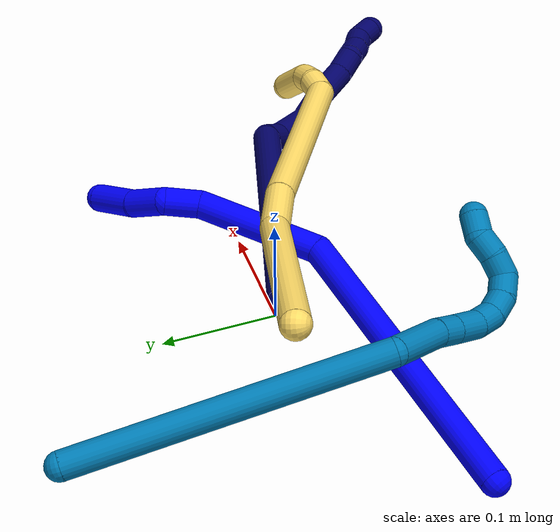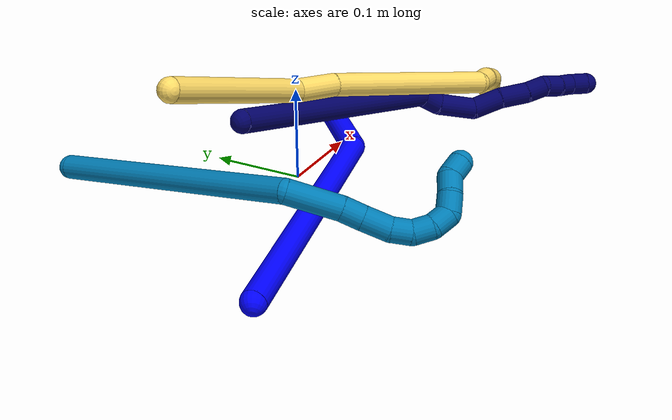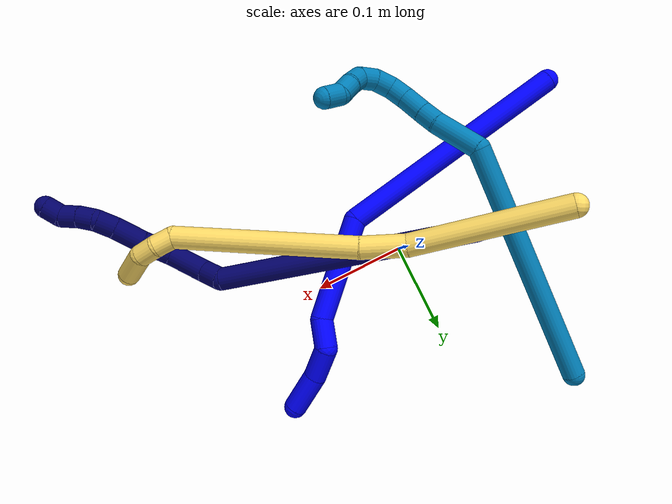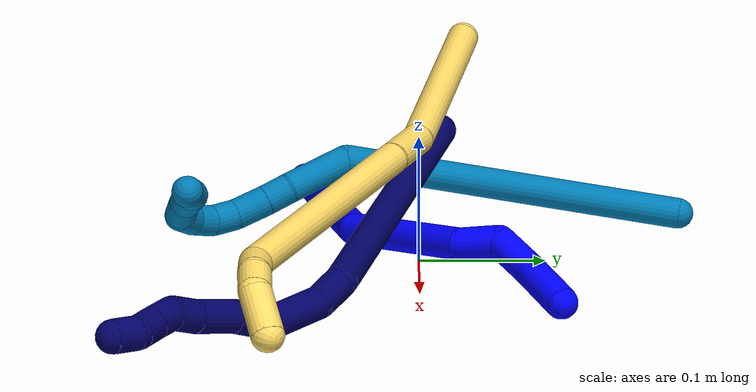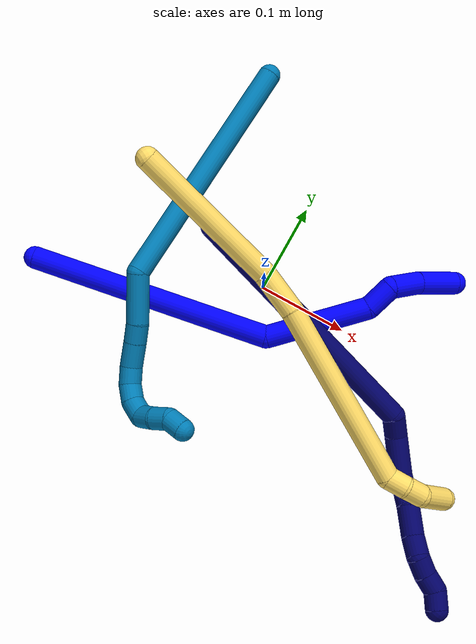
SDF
<sdf version="1.7">
 <world name="default">
  <model name="1">
   <static>0</static>
   <link name="1">
    <collision name="collision-cylinder-e_1_1_4">
     <pose>-0.035363 0.040154 -0.124892 -2.83052 -0.263304 1.40258</pose>
     <geometry><cylinder><radius>0.0125</radius><length>0.271742</length></cylinder></geometry>
     <surface>
      <friction><ode><mu>1.16</mu><mu2>1.16</mu2><slip1>0</slip1><slip2>0</slip2></ode></friction>
      <contact><ode><kp>1e+06</kp><kd>1</kd><max_vel>0</max_vel><min_depth>0.001</min_depth></ode></contact>
     </surface>
    </collision>
    <visual name="visual-cylinder-e_1_1_4">
     <pose>-0.035363 0.040154 -0.124892 -2.83052 -0.263304 1.40258</pose>
     <geometry><cylinder><radius>0.0125</radius><length>0.271742</length></cylinder></geometry>
     <material><ambient>0 0 1 1</ambient></material>
    </visual>
    <collision name="collision-cylinder-e_2_4_5">
     <pose>-0.051179 0.097199 -0.301066 -2.82341 0.347371 -1.66008</pose>
     <geometry><cylinder><radius>0.0125</radius><length>0.114843</length></cylinder></geometry>
     <surface>
      <friction><ode><mu>1.16</mu><mu2>1.16</mu2><slip1>0</slip1><slip2>0</slip2></ode></friction>
      <contact><ode><kp>1e+06</kp><kd>1</kd><max_vel>0</max_vel><min_depth>0.001</min_depth></ode></contact>
     </surface>
    </collision>
    <visual name="visual-cylinder-e_2_4_5">
     <pose>-0.051179 0.097199 -0.301066 -2.82341 0.347371 -1.66008</pose>
     <geometry><cylinder><radius>0.0125</radius><length>0.114843</length></cylinder></geometry>
     <material><ambient>0 0 1 1</ambient></material>
    </visual>
    <collision name="collision-cylinder-e_3_5_6">
     <pose>-0.020027 0.116161 -0.363003 -2.94956 0.818742 -2.70473</pose>
     <geometry><cylinder><radius>0.0125</radius><length>0.03178</length></cylinder></geometry>
     <surface>
      <friction><ode><mu>1.16</mu><mu2>1.16</mu2><slip1>0</slip1><slip2>0</slip2></ode></friction>
      <contact><ode><kp>1e+06</kp><kd>1</kd><max_vel>0</max_vel><min_depth>0.001</min_depth></ode></contact>
     </surface>
    </collision>
    <visual name="visual-cylinder-e_3_5_6">
     <pose>-0.020027 0.116161 -0.363003 -2.94956 0.818742 -2.70473</pose>
     <geometry><cylinder><radius>0.0125</radius><length>0.03178</length></cylinder></geometry>
     <material><ambient>0 0 1 1</ambient></material>
    </visual>
    <collision name="collision-cylinder-e_4_6_7">
     <pose>-0.003386 0.131756 -0.385176 -2.27628 0.276301 -0.58484</pose>
     <geometry><cylinder><radius>0.0125</radius><length>0.036928</length></cylinder></geometry>
     <surface>
      <friction><ode><mu>1.16</mu><mu2>1.16</mu2><slip1>0</slip1><slip2>0</slip2></ode></friction>
      <contact><ode><kp>1e+06</kp><kd>1</kd><max_vel>0</max_vel><min_depth>0.001</min_depth></ode></contact>
     </surface>
    </collision>
    <visual name="visual-cylinder-e_4_6_7">
     <pose>-0.003386 0.131756 -0.385176 -2.27628 0.276301 -0.58484</pose>
     <geometry><cylinder><radius>0.0125</radius><length>0.036928</length></cylinder></geometry>
     <material><ambient>0 0 1 1</ambient></material>
    </visual>
    <collision name="collision-cylinder-e_5_7_2">
     <pose>0.004295 0.160531 -0.412822 -2.38412 0.118555 -0.296084</pose>
     <geometry><cylinder><radius>0.0125</radius><length>0.044707</length></cylinder></geometry>
     <surface>
      <friction><ode><mu>1.16</mu><mu2>1.16</mu2><slip1>0</slip1><slip2>0</slip2></ode></friction>
      <contact><ode><kp>1e+06</kp><kd>1</kd><max_vel>0</max_vel><min_depth>0.001</min_depth></ode></contact>
     </surface>
    </collision>
    <visual name="visual-cylinder-e_5_7_2">
     <pose>0.004295 0.160531 -0.412822 -2.38412 0.118555 -0.296084</pose>
     <geometry><cylinder><radius>0.0125</radius><length>0.044707</length></cylinder></geometry>
     <material><ambient>0 0 1 1</ambient></material>
    </visual>
    <collision name="collision-sphere-2">
     <pose>0.006939 0.175782 -0.42895 0 -0 0</pose>
     <geometry><sphere><radius>0.0125</radius></sphere></geometry>
     <surface>
      <friction><ode><mu>1.16</mu><mu2>1.16</mu2><slip1>0</slip1><slip2>0</slip2></ode></friction>
      <contact><ode><kp>1e+06</kp><kd>1</kd><max_vel>0</max_vel><min_depth>0.001</min_depth></ode></contact>
     </surface>
    </collision>
    <visual name="visual-sphere-2">
     <pose>0.006939 0.175782 -0.42895 0 -0 0</pose>
     <geometry><sphere><radius>0.0125</radius></sphere></geometry>
     <material><ambient>0 0 1 1</ambient></material>
    </visual>
    <collision name="collision-sphere-7">
     <pose>0.001651 0.14528 -0.396694 0 -0 0</pose>
     <geometry><sphere><radius>0.0125</radius></sphere></geometry>
     <surface>
      <friction><ode><mu>1.16</mu><mu2>1.16</mu2><slip1>0</slip1><slip2>0</slip2></ode></friction>
      <contact><ode><kp>1e+06</kp><kd>1</kd><max_vel>0</max_vel><min_depth>0.001</min_depth></ode></contact>
     </surface>
    </collision>
    <visual name="visual-sphere-7">
     <pose>0.001651 0.14528 -0.396694 0 -0 0</pose>
     <geometry><sphere><radius>0.0125</radius></sphere></geometry>
     <material><ambient>0 0 1 1</ambient></material>
    </visual>
    <collision name="collision-sphere-6">
     <pose>-0.008423 0.118233 -0.373658 0 -0 0</pose>
     <geometry><sphere><radius>0.0125</radius></sphere></geometry>
     <surface>
      <friction><ode><mu>1.16</mu><mu2>1.16</mu2><slip1>0</slip1><slip2>0</slip2></ode></friction>
      <contact><ode><kp>1e+06</kp><kd>1</kd><max_vel>0</max_vel><min_depth>0.001</min_depth></ode></contact>
     </surface>
    </collision>
    <visual name="visual-sphere-6">
     <pose>-0.008423 0.118233 -0.373658 0 -0 0</pose>
     <geometry><sphere><radius>0.0125</radius></sphere></geometry>
     <material><ambient>0 0 1 1</ambient></material>
    </visual>
    <collision name="collision-sphere-5">
     <pose>-0.031631 0.114089 -0.352347 0 -0 0</pose>
     <geometry><sphere><radius>0.0125</radius></sphere></geometry>
     <surface>
      <friction><ode><mu>1.16</mu><mu2>1.16</mu2><slip1>0</slip1><slip2>0</slip2></ode></friction>
      <contact><ode><kp>1e+06</kp><kd>1</kd><max_vel>0</max_vel><min_depth>0.001</min_depth></ode></contact>
     </surface>
    </collision>
    <visual name="visual-sphere-5">
     <pose>-0.031631 0.114089 -0.352347 0 -0 0</pose>
     <geometry><sphere><radius>0.0125</radius></sphere></geometry>
     <material><ambient>0 0 1 1</ambient></material>
    </visual>
    <collision name="collision-sphere-1">
     <geometry><sphere><radius>0.0125</radius></sphere></geometry>
     <surface>
      <friction><ode><mu>1.16</mu><mu2>1.16</mu2><slip1>0</slip1><slip2>0</slip2></ode></friction>
      <contact><ode><kp>1e+06</kp><kd>1</kd><max_vel>0</max_vel><min_depth>0.001</min_depth></ode></contact>
     </surface>
    </collision>
    <visual name="visual-sphere-1">
     <geometry><sphere><radius>0.0125</radius></sphere></geometry>
     <material><ambient>0 0 1 1</ambient></material>
    </visual>
    <collision name="collision-sphere-4">
     <pose>-0.070727 0.080308 -0.249784 0 -0 0</pose>
     <geometry><sphere><radius>0.0125</radius></sphere></geometry>
     <surface>
      <friction><ode><mu>1.16</mu><mu2>1.16</mu2><slip1>0</slip1><slip2>0</slip2></ode></friction>
      <contact><ode><kp>1e+06</kp><kd>1</kd><max_vel>0</max_vel><min_depth>0.001</min_depth></ode></contact>
     </surface>
    </collision>
    <visual name="visual-sphere-4">
     <pose>-0.070727 0.080308 -0.249784 0 -0 0</pose>
     <geometry><sphere><radius>0.0125</radius></sphere></geometry>
     <material><ambient>0 0 1 1</ambient></material>
    </visual>
    <inertial>
     <pose>-0.032114 0.075616 -0.22546 0 -0 0</pose>
     <mass>0.5</mass>
     <inertia>
      <ixx>0.001745</ixx>
      <ixy>0</ixy>
      <ixz>0</ixz>
      <iyy>0.00137</iyy>
      <iyz>0</iyz>
      <izz>-0.000192</izz>
     </inertia>
    </inertial>
   </link>
   <pose>-0.235937 -0.094572 0.011994 -1.966 -0.00429 1.99972</pose>
  </model>
  <model name="5">
   <static>0</static>
   <link name="5">
    <collision name="collision-cylinder-e_1_1_4">
     <pose>0.07233 -0.03088 -0.030157 2.34435 1.03277 1.86514</pose>
     <geometry><cylinder><radius>0.0125</radius><length>0.16846</length></cylinder></geometry>
     <surface>
      <friction><ode><mu>1.16</mu><mu2>1.16</mu2><slip1>0</slip1><slip2>0</slip2></ode></friction>
      <contact><ode><kp>1e+06</kp><kd>1</kd><max_vel>0</max_vel><min_depth>0.001</min_depth></ode></contact>
     </surface>
    </collision>
    <visual name="visual-cylinder-e_1_1_4">
     <pose>0.07233 -0.03088 -0.030157 2.34435 1.03277 1.86514</pose>
     <geometry><cylinder><radius>0.0125</radius><length>0.16846</length></cylinder></geometry>
     <material><ambient>1 0.858824 0.4 1</ambient></material>
    </visual>
    <collision name="collision-cylinder-e_2_4_5">
     <pose>0.167939 -0.06756 -0.064109 2.15027 1.28142 1.88682</pose>
     <geometry><cylinder><radius>0.0125</radius><length>0.048577</length></cylinder></geometry>
     <surface>
      <friction><ode><mu>1.16</mu><mu2>1.16</mu2><slip1>0</slip1><slip2>0</slip2></ode></friction>
      <contact><ode><kp>1e+06</kp><kd>1</kd><max_vel>0</max_vel><min_depth>0.001</min_depth></ode></contact>
     </surface>
    </collision>
    <visual name="visual-cylinder-e_2_4_5">
     <pose>0.167939 -0.06756 -0.064109 2.15027 1.28142 1.88682</pose>
     <geometry><cylinder><radius>0.0125</radius><length>0.048577</length></cylinder></geometry>
     <material><ambient>1 0.858824 0.4 1</ambient></material>
    </visual>
    <collision name="collision-cylinder-e_3_5_6">
     <pose>0.285882 -0.107823 -0.074737 1.76652 1.21541 1.40542</pose>
     <geometry><cylinder><radius>0.0125</radius><length>0.201949</length></cylinder></geometry>
     <surface>
      <friction><ode><mu>1.16</mu><mu2>1.16</mu2><slip1>0</slip1><slip2>0</slip2></ode></friction>
      <contact><ode><kp>1e+06</kp><kd>1</kd><max_vel>0</max_vel><min_depth>0.001</min_depth></ode></contact>
     </surface>
    </collision>
    <visual name="visual-cylinder-e_3_5_6">
     <pose>0.285882 -0.107823 -0.074737 1.76652 1.21541 1.40542</pose>
     <geometry><cylinder><radius>0.0125</radius><length>0.201949</length></cylinder></geometry>
     <material><ambient>1 0.858824 0.4 1</ambient></material>
    </visual>
    <collision name="collision-cylinder-e_4_6_7">
     <pose>0.3897 -0.143471 -0.087374 2.94031 0.9964 2.77448</pose>
     <geometry><cylinder><radius>0.0125</radius><length>0.021806</length></cylinder></geometry>
     <surface>
      <friction><ode><mu>1.16</mu><mu2>1.16</mu2><slip1>0</slip1><slip2>0</slip2></ode></friction>
      <contact><ode><kp>1e+06</kp><kd>1</kd><max_vel>0</max_vel><min_depth>0.001</min_depth></ode></contact>
     </surface>
    </collision>
    <visual name="visual-cylinder-e_4_6_7">
     <pose>0.3897 -0.143471 -0.087374 2.94031 0.9964 2.77448</pose>
     <geometry><cylinder><radius>0.0125</radius><length>0.021806</length></cylinder></geometry>
     <material><ambient>1 0.858824 0.4 1</ambient></material>
    </visual>
    <collision name="collision-cylinder-e_5_7_8">
     <pose>0.406552 -0.148641 -0.099621 2.58761 0.793482 1.94917</pose>
     <geometry><cylinder><radius>0.0125</radius><length>0.021602</length></cylinder></geometry>
     <surface>
      <friction><ode><mu>1.16</mu><mu2>1.16</mu2><slip1>0</slip1><slip2>0</slip2></ode></friction>
      <contact><ode><kp>1e+06</kp><kd>1</kd><max_vel>0</max_vel><min_depth>0.001</min_depth></ode></contact>
     </surface>
    </collision>
    <visual name="visual-cylinder-e_5_7_8">
     <pose>0.406552 -0.148641 -0.099621 2.58761 0.793482 1.94917</pose>
     <geometry><cylinder><radius>0.0125</radius><length>0.021602</length></cylinder></geometry>
     <material><ambient>1 0.858824 0.4 1</ambient></material>
    </visual>
    <collision name="collision-cylinder-e_6_8_2">
     <pose>0.4206 -0.164043 -0.119587 2.44048 0.344418 0.887983</pose>
     <geometry><cylinder><radius>0.0125</radius><length>0.037606</length></cylinder></geometry>
     <surface>
      <friction><ode><mu>1.16</mu><mu2>1.16</mu2><slip1>0</slip1><slip2>0</slip2></ode></friction>
      <contact><ode><kp>1e+06</kp><kd>1</kd><max_vel>0</max_vel><min_depth>0.001</min_depth></ode></contact>
     </surface>
    </collision>
    <visual name="visual-cylinder-e_6_8_2">
     <pose>0.4206 -0.164043 -0.119587 2.44048 0.344418 0.887983</pose>
     <geometry><cylinder><radius>0.0125</radius><length>0.037606</length></cylinder></geometry>
     <material><ambient>1 0.858824 0.4 1</ambient></material>
    </visual>
    <collision name="collision-sphere-2">
     <pose>0.426949 -0.17546 -0.133112 0 -0 0</pose>
     <geometry><sphere><radius>0.0125</radius></sphere></geometry>
     <surface>
      <friction><ode><mu>1.16</mu><mu2>1.16</mu2><slip1>0</slip1><slip2>0</slip2></ode></friction>
      <contact><ode><kp>1e+06</kp><kd>1</kd><max_vel>0</max_vel><min_depth>0.001</min_depth></ode></contact>
     </surface>
    </collision>
    <visual name="visual-sphere-2">
     <pose>0.426949 -0.17546 -0.133112 0 -0 0</pose>
     <geometry><sphere><radius>0.0125</radius></sphere></geometry>
     <material><ambient>1 0.858824 0.4 1</ambient></material>
    </visual>
    <collision name="collision-sphere-4">
     <pose>0.144661 -0.06176 -0.060314 0 -0 0</pose>
     <geometry><sphere><radius>0.0125</radius></sphere></geometry>
     <surface>
      <friction><ode><mu>1.16</mu><mu2>1.16</mu2><slip1>0</slip1><slip2>0</slip2></ode></friction>
      <contact><ode><kp>1e+06</kp><kd>1</kd><max_vel>0</max_vel><min_depth>0.001</min_depth></ode></contact>
     </surface>
    </collision>
    <visual name="visual-sphere-4">
     <pose>0.144661 -0.06176 -0.060314 0 -0 0</pose>
     <geometry><sphere><radius>0.0125</radius></sphere></geometry>
     <material><ambient>1 0.858824 0.4 1</ambient></material>
    </visual>
    <collision name="collision-sphere-1">
     <geometry><sphere><radius>0.0125</radius></sphere></geometry>
     <surface>
      <friction><ode><mu>1.16</mu><mu2>1.16</mu2><slip1>0</slip1><slip2>0</slip2></ode></friction>
      <contact><ode><kp>1e+06</kp><kd>1</kd><max_vel>0</max_vel><min_depth>0.001</min_depth></ode></contact>
     </surface>
    </collision>
    <visual name="visual-sphere-1">
     <geometry><sphere><radius>0.0125</radius></sphere></geometry>
     <material><ambient>1 0.858824 0.4 1</ambient></material>
    </visual>
    <collision name="collision-sphere-8">
     <pose>0.414251 -0.152626 -0.106063 0 -0 0</pose>
     <geometry><sphere><radius>0.0125</radius></sphere></geometry>
     <surface>
      <friction><ode><mu>1.16</mu><mu2>1.16</mu2><slip1>0</slip1><slip2>0</slip2></ode></friction>
      <contact><ode><kp>1e+06</kp><kd>1</kd><max_vel>0</max_vel><min_depth>0.001</min_depth></ode></contact>
     </surface>
    </collision>
    <visual name="visual-sphere-8">
     <pose>0.414251 -0.152626 -0.106063 0 -0 0</pose>
     <geometry><sphere><radius>0.0125</radius></sphere></geometry>
     <material><ambient>1 0.858824 0.4 1</ambient></material>
    </visual>
    <collision name="collision-sphere-5">
     <pose>0.191218 -0.073359 -0.067904 0 -0 0</pose>
     <geometry><sphere><radius>0.0125</radius></sphere></geometry>
     <surface>
      <friction><ode><mu>1.16</mu><mu2>1.16</mu2><slip1>0</slip1><slip2>0</slip2></ode></friction>
      <contact><ode><kp>1e+06</kp><kd>1</kd><max_vel>0</max_vel><min_depth>0.001</min_depth></ode></contact>
     </surface>
    </collision>
    <visual name="visual-sphere-5">
     <pose>0.191218 -0.073359 -0.067904 0 -0 0</pose>
     <geometry><sphere><radius>0.0125</radius></sphere></geometry>
     <material><ambient>1 0.858824 0.4 1</ambient></material>
    </visual>
    <collision name="collision-sphere-6">
     <pose>0.380547 -0.142287 -0.08157 0 -0 0</pose>
     <geometry><sphere><radius>0.0125</radius></sphere></geometry>
     <surface>
      <friction><ode><mu>1.16</mu><mu2>1.16</mu2><slip1>0</slip1><slip2>0</slip2></ode></friction>
      <contact><ode><kp>1e+06</kp><kd>1</kd><max_vel>0</max_vel><min_depth>0.001</min_depth></ode></contact>
     </surface>
    </collision>
    <visual name="visual-sphere-6">
     <pose>0.380547 -0.142287 -0.08157 0 -0 0</pose>
     <geometry><sphere><radius>0.0125</radius></sphere></geometry>
     <material><ambient>1 0.858824 0.4 1</ambient></material>
    </visual>
    <collision name="collision-sphere-7">
     <pose>0.398853 -0.144656 -0.093178 0 -0 0</pose>
     <geometry><sphere><radius>0.0125</radius></sphere></geometry>
     <surface>
      <friction><ode><mu>1.16</mu><mu2>1.16</mu2><slip1>0</slip1><slip2>0</slip2></ode></friction>
      <contact><ode><kp>1e+06</kp><kd>1</kd><max_vel>0</max_vel><min_depth>0.001</min_depth></ode></contact>
     </surface>
    </collision>
    <visual name="visual-sphere-7">
     <pose>0.398853 -0.144656 -0.093178 0 -0 0</pose>
     <geometry><sphere><radius>0.0125</radius></sphere></geometry>
     <material><ambient>1 0.858824 0.4 1</ambient></material>
    </visual>
    <inertial>
     <pose>0.222347 -0.085534 -0.063684 0 -0 0</pose>
     <mass>0.5</mass>
     <inertia>
      <ixx>0.00046</ixx>
      <ixy>0</ixy>
      <ixz>0</ixz>
      <iyy>0.001371</iyy>
      <iyz>0</iyz>
      <izz>-0.000632</izz>
     </inertia>
    </inertial>
   </link>
   <pose>-0.155799 0.037497 0.148998 1.33407 -0.16051 -0.516288</pose>
  </model>
  <model name="7">
   <static>0</static>
   <link name="7">
    <collision name="collision-cylinder-e_1_1_4">
     <pose>0.02446 0.012269 0.137421 -0.089043 0.175465 -0.007837</pose>
     <geometry><cylinder><radius>0.0125</radius><length>0.280238</length></cylinder></geometry>
     <surface>
      <friction><ode><mu>1.16</mu><mu2>1.16</mu2><slip1>0</slip1><slip2>0</slip2></ode></friction>
      <contact><ode><kp>1e+06</kp><kd>1</kd><max_vel>0</max_vel><min_depth>0.001</min_depth></ode></contact>
     </surface>
    </collision>
    <visual name="visual-cylinder-e_1_1_4">
     <pose>0.02446 0.012269 0.137421 -0.089043 0.175465 -0.007837</pose>
     <geometry><cylinder><radius>0.0125</radius><length>0.280238</length></cylinder></geometry>
     <material><ambient>0.003922 0 0.403922 1</ambient></material>
    </visual>
    <collision name="collision-cylinder-e_2_4_5">
     <pose>0.057883 0.024336 0.283082 0.024406 0.827237 0.010713</pose>
     <geometry><cylinder><radius>0.0125</radius><length>0.024355</length></cylinder></geometry>
     <surface>
      <friction><ode><mu>1.16</mu><mu2>1.16</mu2><slip1>0</slip1><slip2>0</slip2></ode></friction>
      <contact><ode><kp>1e+06</kp><kd>1</kd><max_vel>0</max_vel><min_depth>0.001</min_depth></ode></contact>
     </surface>
    </collision>
    <visual name="visual-cylinder-e_2_4_5">
     <pose>0.057883 0.024336 0.283082 0.024406 0.827237 0.010713</pose>
     <geometry><cylinder><radius>0.0125</radius><length>0.024355</length></cylinder></geometry>
     <material><ambient>0.003922 0 0.403922 1</ambient></material>
    </visual>
    <collision name="collision-cylinder-e_3_5_6">
     <pose>0.07974 0.016727 0.308061 0.416671 0.613657 0.133759</pose>
     <geometry><cylinder><radius>0.0125</radius><length>0.044778</length></cylinder></geometry>
     <surface>
      <friction><ode><mu>1.16</mu><mu2>1.16</mu2><slip1>0</slip1><slip2>0</slip2></ode></friction>
      <contact><ode><kp>1e+06</kp><kd>1</kd><max_vel>0</max_vel><min_depth>0.001</min_depth></ode></contact>
     </surface>
    </collision>
    <visual name="visual-cylinder-e_3_5_6">
     <pose>0.07974 0.016727 0.308061 0.416671 0.613657 0.133759</pose>
     <geometry><cylinder><radius>0.0125</radius><length>0.044778</length></cylinder></geometry>
     <material><ambient>0.003922 0 0.403922 1</ambient></material>
    </visual>
    <collision name="collision-cylinder-e_4_6_7">
     <pose>0.095552 -0.001745 0.337721 0.708103 0.169947 0.062948</pose>
     <geometry><cylinder><radius>0.0125</radius><length>0.034521</length></cylinder></geometry>
     <surface>
      <friction><ode><mu>1.16</mu><mu2>1.16</mu2><slip1>0</slip1><slip2>0</slip2></ode></friction>
      <contact><ode><kp>1e+06</kp><kd>1</kd><max_vel>0</max_vel><min_depth>0.001</min_depth></ode></contact>
     </surface>
    </collision>
    <visual name="visual-cylinder-e_4_6_7">
     <pose>0.095552 -0.001745 0.337721 0.708103 0.169947 0.062948</pose>
     <geometry><cylinder><radius>0.0125</radius><length>0.034521</length></cylinder></geometry>
     <material><ambient>0.003922 0 0.403922 1</ambient></material>
    </visual>
    <collision name="collision-cylinder-e_5_7_8">
     <pose>0.103996 -0.022567 0.363044 0.666636 0.336773 0.117582</pose>
     <geometry><cylinder><radius>0.0125</radius><length>0.033438</length></cylinder></geometry>
     <surface>
      <friction><ode><mu>1.16</mu><mu2>1.16</mu2><slip1>0</slip1><slip2>0</slip2></ode></friction>
      <contact><ode><kp>1e+06</kp><kd>1</kd><max_vel>0</max_vel><min_depth>0.001</min_depth></ode></contact>
     </surface>
    </collision>
    <visual name="visual-cylinder-e_5_7_8">
     <pose>0.103996 -0.022567 0.363044 0.666636 0.336773 0.117582</pose>
     <geometry><cylinder><radius>0.0125</radius><length>0.033438</length></cylinder></geometry>
     <material><ambient>0.003922 0 0.403922 1</ambient></material>
    </visual>
    <collision name="collision-cylinder-e_6_8_9">
     <pose>0.111464 -0.039212 0.383992 0.678404 0.175238 0.06197</pose>
     <geometry><cylinder><radius>0.0125</radius><length>0.022295</length></cylinder></geometry>
     <surface>
      <friction><ode><mu>1.16</mu><mu2>1.16</mu2><slip1>0</slip1><slip2>0</slip2></ode></friction>
      <contact><ode><kp>1e+06</kp><kd>1</kd><max_vel>0</max_vel><min_depth>0.001</min_depth></ode></contact>
     </surface>
    </collision>
    <visual name="visual-cylinder-e_6_8_9">
     <pose>0.111464 -0.039212 0.383992 0.678404 0.175238 0.06197</pose>
     <geometry><cylinder><radius>0.0125</radius><length>0.022295</length></cylinder></geometry>
     <material><ambient>0.003922 0 0.403922 1</ambient></material>
    </visual>
    <collision name="collision-cylinder-e_7_9_10">
     <pose>0.117536 -0.048087 0.401544 0.217096 0.420879 0.046547</pose>
     <geometry><cylinder><radius>0.0125</radius><length>0.020209</length></cylinder></geometry>
     <surface>
      <friction><ode><mu>1.16</mu><mu2>1.16</mu2><slip1>0</slip1><slip2>0</slip2></ode></friction>
      <contact><ode><kp>1e+06</kp><kd>1</kd><max_vel>0</max_vel><min_depth>0.001</min_depth></ode></contact>
     </surface>
    </collision>
    <visual name="visual-cylinder-e_7_9_10">
     <pose>0.117536 -0.048087 0.401544 0.217096 0.420879 0.046547</pose>
     <geometry><cylinder><radius>0.0125</radius><length>0.020209</length></cylinder></geometry>
     <material><ambient>0.003922 0 0.403922 1</ambient></material>
    </visual>
    <collision name="collision-cylinder-e_8_10_11">
     <pose>0.124304 -0.051475 0.420107 0.145579 0.266772 0.019568</pose>
     <geometry><cylinder><radius>0.0125</radius><length>0.020026</length></cylinder></geometry>
     <surface>
      <friction><ode><mu>1.16</mu><mu2>1.16</mu2><slip1>0</slip1><slip2>0</slip2></ode></friction>
      <contact><ode><kp>1e+06</kp><kd>1</kd><max_vel>0</max_vel><min_depth>0.001</min_depth></ode></contact>
     </surface>
    </collision>
    <visual name="visual-cylinder-e_8_10_11">
     <pose>0.124304 -0.051475 0.420107 0.145579 0.266772 0.019568</pose>
     <geometry><cylinder><radius>0.0125</radius><length>0.020026</length></cylinder></geometry>
     <material><ambient>0.003922 0 0.403922 1</ambient></material>
    </visual>
    <collision name="collision-cylinder-e_9_11_2">
     <pose>0.131583 -0.058132 0.436893 0.628624 0.478764 0.158352</pose>
     <geometry><cylinder><radius>0.0125</radius><length>0.020142</length></cylinder></geometry>
     <surface>
      <friction><ode><mu>1.16</mu><mu2>1.16</mu2><slip1>0</slip1><slip2>0</slip2></ode></friction>
      <contact><ode><kp>1e+06</kp><kd>1</kd><max_vel>0</max_vel><min_depth>0.001</min_depth></ode></contact>
     </surface>
    </collision>
    <visual name="visual-cylinder-e_9_11_2">
     <pose>0.131583 -0.058132 0.436893 0.628624 0.478764 0.158352</pose>
     <geometry><cylinder><radius>0.0125</radius><length>0.020142</length></cylinder></geometry>
     <material><ambient>0.003922 0 0.403922 1</ambient></material>
    </visual>
    <collision name="collision-sphere-2">
     <pose>0.136222 -0.063388 0.444123 0 -0 0</pose>
     <geometry><sphere><radius>0.0125</radius></sphere></geometry>
     <surface>
      <friction><ode><mu>1.16</mu><mu2>1.16</mu2><slip1>0</slip1><slip2>0</slip2></ode></friction>
      <contact><ode><kp>1e+06</kp><kd>1</kd><max_vel>0</max_vel><min_depth>0.001</min_depth></ode></contact>
     </surface>
    </collision>
    <visual name="visual-sphere-2">
     <pose>0.136222 -0.063388 0.444123 0 -0 0</pose>
     <geometry><sphere><radius>0.0125</radius></sphere></geometry>
     <material><ambient>0.003922 0 0.403922 1</ambient></material>
    </visual>
    <collision name="collision-sphere-11">
     <pose>0.126943 -0.052876 0.429663 0 -0 0</pose>
     <geometry><sphere><radius>0.0125</radius></sphere></geometry>
     <surface>
      <friction><ode><mu>1.16</mu><mu2>1.16</mu2><slip1>0</slip1><slip2>0</slip2></ode></friction>
      <contact><ode><kp>1e+06</kp><kd>1</kd><max_vel>0</max_vel><min_depth>0.001</min_depth></ode></contact>
     </surface>
    </collision>
    <visual name="visual-sphere-11">
     <pose>0.126943 -0.052876 0.429663 0 -0 0</pose>
     <geometry><sphere><radius>0.0125</radius></sphere></geometry>
     <material><ambient>0.003922 0 0.403922 1</ambient></material>
    </visual>
    <collision name="collision-sphere-10">
     <pose>0.121664 -0.050074 0.41055 0 -0 0</pose>
     <geometry><sphere><radius>0.0125</radius></sphere></geometry>
     <surface>
      <friction><ode><mu>1.16</mu><mu2>1.16</mu2><slip1>0</slip1><slip2>0</slip2></ode></friction>
      <contact><ode><kp>1e+06</kp><kd>1</kd><max_vel>0</max_vel><min_depth>0.001</min_depth></ode></contact>
     </surface>
    </collision>
    <visual name="visual-sphere-10">
     <pose>0.121664 -0.050074 0.41055 0 -0 0</pose>
     <geometry><sphere><radius>0.0125</radius></sphere></geometry>
     <material><ambient>0.003922 0 0.403922 1</ambient></material>
    </visual>
    <collision name="collision-sphere-9">
     <pose>0.113407 -0.046101 0.392538 0 -0 0</pose>
     <geometry><sphere><radius>0.0125</radius></sphere></geometry>
     <surface>
      <friction><ode><mu>1.16</mu><mu2>1.16</mu2><slip1>0</slip1><slip2>0</slip2></ode></friction>
      <contact><ode><kp>1e+06</kp><kd>1</kd><max_vel>0</max_vel><min_depth>0.001</min_depth></ode></contact>
     </surface>
    </collision>
    <visual name="visual-sphere-9">
     <pose>0.113407 -0.046101 0.392538 0 -0 0</pose>
     <geometry><sphere><radius>0.0125</radius></sphere></geometry>
     <material><ambient>0.003922 0 0.403922 1</ambient></material>
    </visual>
    <collision name="collision-sphere-4">
     <pose>0.04892 0.024538 0.274841 0 -0 0</pose>
     <geometry><sphere><radius>0.0125</radius></sphere></geometry>
     <surface>
      <friction><ode><mu>1.16</mu><mu2>1.16</mu2><slip1>0</slip1><slip2>0</slip2></ode></friction>
      <contact><ode><kp>1e+06</kp><kd>1</kd><max_vel>0</max_vel><min_depth>0.001</min_depth></ode></contact>
     </surface>
    </collision>
    <visual name="visual-sphere-4">
     <pose>0.04892 0.024538 0.274841 0 -0 0</pose>
     <geometry><sphere><radius>0.0125</radius></sphere></geometry>
     <material><ambient>0.003922 0 0.403922 1</ambient></material>
    </visual>
    <collision name="collision-sphere-1">
     <geometry><sphere><radius>0.0125</radius></sphere></geometry>
     <surface>
      <friction><ode><mu>1.16</mu><mu2>1.16</mu2><slip1>0</slip1><slip2>0</slip2></ode></friction>
      <contact><ode><kp>1e+06</kp><kd>1</kd><max_vel>0</max_vel><min_depth>0.001</min_depth></ode></contact>
     </surface>
    </collision>
    <visual name="visual-sphere-1">
     <geometry><sphere><radius>0.0125</radius></sphere></geometry>
     <material><ambient>0.003922 0 0.403922 1</ambient></material>
    </visual>
    <collision name="collision-sphere-8">
     <pose>0.10952 -0.032324 0.375445 0 -0 0</pose>
     <geometry><sphere><radius>0.0125</radius></sphere></geometry>
     <surface>
      <friction><ode><mu>1.16</mu><mu2>1.16</mu2><slip1>0</slip1><slip2>0</slip2></ode></friction>
      <contact><ode><kp>1e+06</kp><kd>1</kd><max_vel>0</max_vel><min_depth>0.001</min_depth></ode></contact>
     </surface>
    </collision>
    <visual name="visual-sphere-8">
     <pose>0.10952 -0.032324 0.375445 0 -0 0</pose>
     <geometry><sphere><radius>0.0125</radius></sphere></geometry>
     <material><ambient>0.003922 0 0.403922 1</ambient></material>
    </visual>
    <collision name="collision-sphere-5">
     <pose>0.066847 0.024135 0.291323 0 -0 0</pose>
     <geometry><sphere><radius>0.0125</radius></sphere></geometry>
     <surface>
      <friction><ode><mu>1.16</mu><mu2>1.16</mu2><slip1>0</slip1><slip2>0</slip2></ode></friction>
      <contact><ode><kp>1e+06</kp><kd>1</kd><max_vel>0</max_vel><min_depth>0.001</min_depth></ode></contact>
     </surface>
    </collision>
    <visual name="visual-sphere-5">
     <pose>0.066847 0.024135 0.291323 0 -0 0</pose>
     <geometry><sphere><radius>0.0125</radius></sphere></geometry>
     <material><ambient>0.003922 0 0.403922 1</ambient></material>
    </visual>
    <collision name="collision-sphere-6">
     <pose>0.092633 0.009319 0.324799 0 -0 0</pose>
     <geometry><sphere><radius>0.0125</radius></sphere></geometry>
     <surface>
      <friction><ode><mu>1.16</mu><mu2>1.16</mu2><slip1>0</slip1><slip2>0</slip2></ode></friction>
      <contact><ode><kp>1e+06</kp><kd>1</kd><max_vel>0</max_vel><min_depth>0.001</min_depth></ode></contact>
     </surface>
    </collision>
    <visual name="visual-sphere-6">
     <pose>0.092633 0.009319 0.324799 0 -0 0</pose>
     <geometry><sphere><radius>0.0125</radius></sphere></geometry>
     <material><ambient>0.003922 0 0.403922 1</ambient></material>
    </visual>
    <collision name="collision-sphere-7">
     <pose>0.098471 -0.012809 0.350643 0 -0 0</pose>
     <geometry><sphere><radius>0.0125</radius></sphere></geometry>
     <surface>
      <friction><ode><mu>1.16</mu><mu2>1.16</mu2><slip1>0</slip1><slip2>0</slip2></ode></friction>
      <contact><ode><kp>1e+06</kp><kd>1</kd><max_vel>0</max_vel><min_depth>0.001</min_depth></ode></contact>
     </surface>
    </collision>
    <visual name="visual-sphere-7">
     <pose>0.098471 -0.012809 0.350643 0 -0 0</pose>
     <geometry><sphere><radius>0.0125</radius></sphere></geometry>
     <material><ambient>0.003922 0 0.403922 1</ambient></material>
    </visual>
    <inertial>
     <pose>0.057221 -0.000165 0.233771 0 -0 0</pose>
     <mass>0.5</mass>
     <inertia>
      <ixx>0.001839</ixx>
      <ixy>0</ixy>
      <ixz>0</ixz>
      <iyy>0.001844</iyy>
      <iyz>0</iyz>
      <izz>-0.000449</izz>
     </inertia>
    </inertial>
   </link>
   <pose>-0.072326 0.01817 0.089557 -1.58399 0.810304 -1.80407</pose>
  </model>
  <model name="9">
   <static>0</static>
   <link name="9">
    <collision name="collision-cylinder-e_1_1_4">
     <pose>0.091474 -0.102282 -0.005409 1.62363 0.728979 0.764887</pose>
     <geometry><cylinder><radius>0.0125</radius><length>0.274652</length></cylinder></geometry>
     <surface>
      <friction><ode><mu>1.16</mu><mu2>1.16</mu2><slip1>0</slip1><slip2>0</slip2></ode></friction>
      <contact><ode><kp>1e+06</kp><kd>1</kd><max_vel>0</max_vel><min_depth>0.001</min_depth></ode></contact>
     </surface>
    </collision>
    <visual name="visual-cylinder-e_1_1_4">
     <pose>0.091474 -0.102282 -0.005409 1.62363 0.728979 0.764887</pose>
     <geometry><cylinder><radius>0.0125</radius><length>0.274652</length></cylinder></geometry>
     <material><ambient>0 0.490196 0.709804 1</ambient></material>
    </visual>
    <collision name="collision-cylinder-e_2_4_5">
     <pose>0.183531 -0.232186 -0.012823 1.64322 0.021068 0.022652</pose>
     <geometry><cylinder><radius>0.0125</radius><length>0.0554</length></cylinder></geometry>
     <surface>
      <friction><ode><mu>1.16</mu><mu2>1.16</mu2><slip1>0</slip1><slip2>0</slip2></ode></friction>
      <contact><ode><kp>1e+06</kp><kd>1</kd><max_vel>0</max_vel><min_depth>0.001</min_depth></ode></contact>
     </surface>
    </collision>
    <visual name="visual-cylinder-e_2_4_5">
     <pose>0.183531 -0.232186 -0.012823 1.64322 0.021068 0.022652</pose>
     <geometry><cylinder><radius>0.0125</radius><length>0.0554</length></cylinder></geometry>
     <material><ambient>0 0.490196 0.709804 1</ambient></material>
    </visual>
    <collision name="collision-cylinder-e_3_5_6">
     <pose>0.184758 -0.270505 -0.014059 1.4992 0.0599 0.05576</pose>
     <geometry><cylinder><radius>0.0125</radius><length>0.021488</length></cylinder></geometry>
     <surface>
      <friction><ode><mu>1.16</mu><mu2>1.16</mu2><slip1>0</slip1><slip2>0</slip2></ode></friction>
      <contact><ode><kp>1e+06</kp><kd>1</kd><max_vel>0</max_vel><min_depth>0.001</min_depth></ode></contact>
     </surface>
    </collision>
    <visual name="visual-cylinder-e_3_5_6">
     <pose>0.184758 -0.270505 -0.014059 1.4992 0.0599 0.05576</pose>
     <geometry><cylinder><radius>0.0125</radius><length>0.021488</length></cylinder></geometry>
     <material><ambient>0 0.490196 0.709804 1</ambient></material>
    </visual>
    <collision name="collision-cylinder-e_4_6_7">
     <pose>0.186885 -0.295086 -0.012564 1.51843 0.106325 0.100907</pose>
     <geometry><cylinder><radius>0.0125</radius><length>0.027965</length></cylinder></geometry>
     <surface>
      <friction><ode><mu>1.16</mu><mu2>1.16</mu2><slip1>0</slip1><slip2>0</slip2></ode></friction>
      <contact><ode><kp>1e+06</kp><kd>1</kd><max_vel>0</max_vel><min_depth>0.001</min_depth></ode></contact>
     </surface>
    </collision>
    <visual name="visual-cylinder-e_4_6_7">
     <pose>0.186885 -0.295086 -0.012564 1.51843 0.106325 0.100907</pose>
     <geometry><cylinder><radius>0.0125</radius><length>0.027965</length></cylinder></geometry>
     <material><ambient>0 0.490196 0.709804 1</ambient></material>
    </visual>
    <collision name="collision-cylinder-e_5_7_8">
     <pose>0.19016 -0.31888 -0.01367 1.75378 0.175872 0.211164</pose>
     <geometry><cylinder><radius>0.0125</radius><length>0.02047</length></cylinder></geometry>
     <surface>
      <friction><ode><mu>1.16</mu><mu2>1.16</mu2><slip1>0</slip1><slip2>0</slip2></ode></friction>
      <contact><ode><kp>1e+06</kp><kd>1</kd><max_vel>0</max_vel><min_depth>0.001</min_depth></ode></contact>
     </surface>
    </collision>
    <visual name="visual-cylinder-e_5_7_8">
     <pose>0.19016 -0.31888 -0.01367 1.75378 0.175872 0.211164</pose>
     <geometry><cylinder><radius>0.0125</radius><length>0.02047</length></cylinder></geometry>
     <material><ambient>0 0.490196 0.709804 1</ambient></material>
    </visual>
    <collision name="collision-cylinder-e_6_8_9">
     <pose>0.193954 -0.336749 -0.021225 2.19392 0.201554 0.389385</pose>
     <geometry><cylinder><radius>0.0125</radius><length>0.020011</length></cylinder></geometry>
     <surface>
      <friction><ode><mu>1.16</mu><mu2>1.16</mu2><slip1>0</slip1><slip2>0</slip2></ode></friction>
      <contact><ode><kp>1e+06</kp><kd>1</kd><max_vel>0</max_vel><min_depth>0.001</min_depth></ode></contact>
     </surface>
    </collision>
    <visual name="visual-cylinder-e_6_8_9">
     <pose>0.193954 -0.336749 -0.021225 2.19392 0.201554 0.389385</pose>
     <geometry><cylinder><radius>0.0125</radius><length>0.020011</length></cylinder></geometry>
     <material><ambient>0 0.490196 0.709804 1</ambient></material>
    </visual>
    <collision name="collision-cylinder-e_7_9_10">
     <pose>0.196214 -0.350147 -0.035335 2.56654 0.02575 0.087026</pose>
     <geometry><cylinder><radius>0.0125</radius><length>0.020003</length></cylinder></geometry>
     <surface>
      <friction><ode><mu>1.16</mu><mu2>1.16</mu2><slip1>0</slip1><slip2>0</slip2></ode></friction>
      <contact><ode><kp>1e+06</kp><kd>1</kd><max_vel>0</max_vel><min_depth>0.001</min_depth></ode></contact>
     </surface>
    </collision>
    <visual name="visual-cylinder-e_7_9_10">
     <pose>0.196214 -0.350147 -0.035335 2.56654 0.02575 0.087026</pose>
     <geometry><cylinder><radius>0.0125</radius><length>0.020003</length></cylinder></geometry>
     <material><ambient>0 0.490196 0.709804 1</ambient></material>
    </visual>
    <collision name="collision-cylinder-e_8_10_11">
     <pose>0.19564 -0.353805 -0.053533 -2.96201 -0.083204 0.866137</pose>
     <geometry><cylinder><radius>0.0125</radius><length>0.020005</length></cylinder></geometry>
     <surface>
      <friction><ode><mu>1.16</mu><mu2>1.16</mu2><slip1>0</slip1><slip2>0</slip2></ode></friction>
      <contact><ode><kp>1e+06</kp><kd>1</kd><max_vel>0</max_vel><min_depth>0.001</min_depth></ode></contact>
     </surface>
    </collision>
    <visual name="visual-cylinder-e_8_10_11">
     <pose>0.19564 -0.353805 -0.053533 -2.96201 -0.083204 0.866137</pose>
     <geometry><cylinder><radius>0.0125</radius><length>0.020005</length></cylinder></geometry>
     <material><ambient>0 0.490196 0.709804 1</ambient></material>
    </visual>
    <collision name="collision-cylinder-e_9_11_12">
     <pose>0.19182 -0.350139 -0.072698 -2.94285 -0.303521 1.98615</pose>
     <geometry><cylinder><radius>0.0125</radius><length>0.020005</length></cylinder></geometry>
     <surface>
      <friction><ode><mu>1.16</mu><mu2>1.16</mu2><slip1>0</slip1><slip2>0</slip2></ode></friction>
      <contact><ode><kp>1e+06</kp><kd>1</kd><max_vel>0</max_vel><min_depth>0.001</min_depth></ode></contact>
     </surface>
    </collision>
    <visual name="visual-cylinder-e_9_11_12">
     <pose>0.19182 -0.350139 -0.072698 -2.94285 -0.303521 1.98615</pose>
     <geometry><cylinder><radius>0.0125</radius><length>0.020005</length></cylinder></geometry>
     <material><ambient>0 0.490196 0.709804 1</ambient></material>
    </visual>
    <collision name="collision-cylinder-e_10_12_2">
     <pose>0.186864 -0.351717 -0.091229 2.78068 -0.197878 -0.996568</pose>
     <geometry><cylinder><radius>0.0125</radius><length>0.020001</length></cylinder></geometry>
     <surface>
      <friction><ode><mu>1.16</mu><mu2>1.16</mu2><slip1>0</slip1><slip2>0</slip2></ode></friction>
      <contact><ode><kp>1e+06</kp><kd>1</kd><max_vel>0</max_vel><min_depth>0.001</min_depth></ode></contact>
     </surface>
    </collision>
    <visual name="visual-cylinder-e_10_12_2">
     <pose>0.186864 -0.351717 -0.091229 2.78068 -0.197878 -0.996568</pose>
     <geometry><cylinder><radius>0.0125</radius><length>0.020001</length></cylinder></geometry>
     <material><ambient>0 0.490196 0.709804 1</ambient></material>
    </visual>
    <collision name="collision-sphere-2">
     <pose>0.184898 -0.35518 -0.100403 0 -0 0</pose>
     <geometry><sphere><radius>0.0125</radius></sphere></geometry>
     <surface>
      <friction><ode><mu>1.16</mu><mu2>1.16</mu2><slip1>0</slip1><slip2>0</slip2></ode></friction>
      <contact><ode><kp>1e+06</kp><kd>1</kd><max_vel>0</max_vel><min_depth>0.001</min_depth></ode></contact>
     </surface>
    </collision>
    <visual name="visual-sphere-2">
     <pose>0.184898 -0.35518 -0.100403 0 -0 0</pose>
     <geometry><sphere><radius>0.0125</radius></sphere></geometry>
     <material><ambient>0 0.490196 0.709804 1</ambient></material>
    </visual>
    <collision name="collision-sphere-12">
     <pose>0.18883 -0.348255 -0.082056 0 -0 0</pose>
     <geometry><sphere><radius>0.0125</radius></sphere></geometry>
     <surface>
      <friction><ode><mu>1.16</mu><mu2>1.16</mu2><slip1>0</slip1><slip2>0</slip2></ode></friction>
      <contact><ode><kp>1e+06</kp><kd>1</kd><max_vel>0</max_vel><min_depth>0.001</min_depth></ode></contact>
     </surface>
    </collision>
    <visual name="visual-sphere-12">
     <pose>0.18883 -0.348255 -0.082056 0 -0 0</pose>
     <geometry><sphere><radius>0.0125</radius></sphere></geometry>
     <material><ambient>0 0.490196 0.709804 1</ambient></material>
    </visual>
    <collision name="collision-sphere-11">
     <pose>0.194809 -0.352024 -0.063341 0 -0 0</pose>
     <geometry><sphere><radius>0.0125</radius></sphere></geometry>
     <surface>
      <friction><ode><mu>1.16</mu><mu2>1.16</mu2><slip1>0</slip1><slip2>0</slip2></ode></friction>
      <contact><ode><kp>1e+06</kp><kd>1</kd><max_vel>0</max_vel><min_depth>0.001</min_depth></ode></contact>
     </surface>
    </collision>
    <visual name="visual-sphere-11">
     <pose>0.194809 -0.352024 -0.063341 0 -0 0</pose>
     <geometry><sphere><radius>0.0125</radius></sphere></geometry>
     <material><ambient>0 0.490196 0.709804 1</ambient></material>
    </visual>
    <collision name="collision-sphere-10">
     <pose>0.196472 -0.355585 -0.043725 0 -0 0</pose>
     <geometry><sphere><radius>0.0125</radius></sphere></geometry>
     <surface>
      <friction><ode><mu>1.16</mu><mu2>1.16</mu2><slip1>0</slip1><slip2>0</slip2></ode></friction>
      <contact><ode><kp>1e+06</kp><kd>1</kd><max_vel>0</max_vel><min_depth>0.001</min_depth></ode></contact>
     </surface>
    </collision>
    <visual name="visual-sphere-10">
     <pose>0.196472 -0.355585 -0.043725 0 -0 0</pose>
     <geometry><sphere><radius>0.0125</radius></sphere></geometry>
     <material><ambient>0 0.490196 0.709804 1</ambient></material>
    </visual>
    <collision name="collision-sphere-9">
     <pose>0.195957 -0.34471 -0.026945 0 -0 0</pose>
     <geometry><sphere><radius>0.0125</radius></sphere></geometry>
     <surface>
      <friction><ode><mu>1.16</mu><mu2>1.16</mu2><slip1>0</slip1><slip2>0</slip2></ode></friction>
      <contact><ode><kp>1e+06</kp><kd>1</kd><max_vel>0</max_vel><min_depth>0.001</min_depth></ode></contact>
     </surface>
    </collision>
    <visual name="visual-sphere-9">
     <pose>0.195957 -0.34471 -0.026945 0 -0 0</pose>
     <geometry><sphere><radius>0.0125</radius></sphere></geometry>
     <material><ambient>0 0.490196 0.709804 1</ambient></material>
    </visual>
    <collision name="collision-sphere-4">
     <pose>0.182948 -0.204564 -0.010819 0 -0 0</pose>
     <geometry><sphere><radius>0.0125</radius></sphere></geometry>
     <surface>
      <friction><ode><mu>1.16</mu><mu2>1.16</mu2><slip1>0</slip1><slip2>0</slip2></ode></friction>
      <contact><ode><kp>1e+06</kp><kd>1</kd><max_vel>0</max_vel><min_depth>0.001</min_depth></ode></contact>
     </surface>
    </collision>
    <visual name="visual-sphere-4">
     <pose>0.182948 -0.204564 -0.010819 0 -0 0</pose>
     <geometry><sphere><radius>0.0125</radius></sphere></geometry>
     <material><ambient>0 0.490196 0.709804 1</ambient></material>
    </visual>
    <collision name="collision-sphere-1">
     <geometry><sphere><radius>0.0125</radius></sphere></geometry>
     <surface>
      <friction><ode><mu>1.16</mu><mu2>1.16</mu2><slip1>0</slip1><slip2>0</slip2></ode></friction>
      <contact><ode><kp>1e+06</kp><kd>1</kd><max_vel>0</max_vel><min_depth>0.001</min_depth></ode></contact>
     </surface>
    </collision>
    <visual name="visual-sphere-1">
     <geometry><sphere><radius>0.0125</radius></sphere></geometry>
     <material><ambient>0 0.490196 0.709804 1</ambient></material>
    </visual>
    <collision name="collision-sphere-8">
     <pose>0.191951 -0.328789 -0.015504 0 -0 0</pose>
     <geometry><sphere><radius>0.0125</radius></sphere></geometry>
     <surface>
      <friction><ode><mu>1.16</mu><mu2>1.16</mu2><slip1>0</slip1><slip2>0</slip2></ode></friction>
      <contact><ode><kp>1e+06</kp><kd>1</kd><max_vel>0</max_vel><min_depth>0.001</min_depth></ode></contact>
     </surface>
    </collision>
    <visual name="visual-sphere-8">
     <pose>0.191951 -0.328789 -0.015504 0 -0 0</pose>
     <geometry><sphere><radius>0.0125</radius></sphere></geometry>
     <material><ambient>0 0.490196 0.709804 1</ambient></material>
    </visual>
    <collision name="collision-sphere-5">
     <pose>0.184115 -0.259807 -0.014827 0 -0 0</pose>
     <geometry><sphere><radius>0.0125</radius></sphere></geometry>
     <surface>
      <friction><ode><mu>1.16</mu><mu2>1.16</mu2><slip1>0</slip1><slip2>0</slip2></ode></friction>
      <contact><ode><kp>1e+06</kp><kd>1</kd><max_vel>0</max_vel><min_depth>0.001</min_depth></ode></contact>
     </surface>
    </collision>
    <visual name="visual-sphere-5">
     <pose>0.184115 -0.259807 -0.014827 0 -0 0</pose>
     <geometry><sphere><radius>0.0125</radius></sphere></geometry>
     <material><ambient>0 0.490196 0.709804 1</ambient></material>
    </visual>
    <collision name="collision-sphere-6">
     <pose>0.185401 -0.281202 -0.013292 0 -0 0</pose>
     <geometry><sphere><radius>0.0125</radius></sphere></geometry>
     <surface>
      <friction><ode><mu>1.16</mu><mu2>1.16</mu2><slip1>0</slip1><slip2>0</slip2></ode></friction>
      <contact><ode><kp>1e+06</kp><kd>1</kd><max_vel>0</max_vel><min_depth>0.001</min_depth></ode></contact>
     </surface>
    </collision>
    <visual name="visual-sphere-6">
     <pose>0.185401 -0.281202 -0.013292 0 -0 0</pose>
     <geometry><sphere><radius>0.0125</radius></sphere></geometry>
     <material><ambient>0 0.490196 0.709804 1</ambient></material>
    </visual>
    <collision name="collision-sphere-7">
     <pose>0.188369 -0.308971 -0.011837 0 -0 0</pose>
     <geometry><sphere><radius>0.0125</radius></sphere></geometry>
     <surface>
      <friction><ode><mu>1.16</mu><mu2>1.16</mu2><slip1>0</slip1><slip2>0</slip2></ode></friction>
      <contact><ode><kp>1e+06</kp><kd>1</kd><max_vel>0</max_vel><min_depth>0.001</min_depth></ode></contact>
     </surface>
    </collision>
    <visual name="visual-sphere-7">
     <pose>0.188369 -0.308971 -0.011837 0 -0 0</pose>
     <geometry><sphere><radius>0.0125</radius></sphere></geometry>
     <material><ambient>0 0.490196 0.709804 1</ambient></material>
    </visual>
    <inertial>
     <pose>0.135349 -0.192814 -0.017222 0 -0 0</pose>
     <mass>0.5</mass>
     <inertia>
      <ixx>0.001876</ixx>
      <ixy>0</ixy>
      <ixz>0</ixz>
      <iyy>0.001602</iyy>
      <iyz>0</iyz>
      <izz>0.000153</izz>
     </inertia>
    </inertial>
   </link>
   <pose>-0.10992 0.212974 0.011507 2.6193 -0.677716 -2.35247</pose>
  </model>
 </world>
</sdf>
